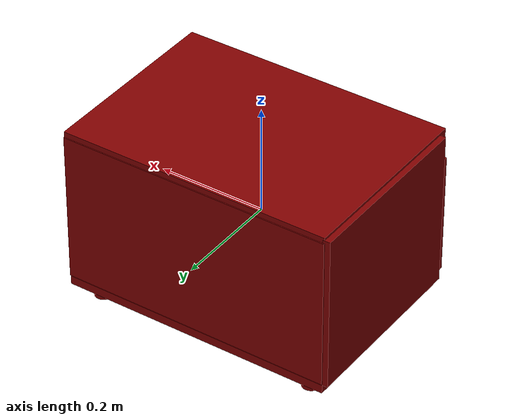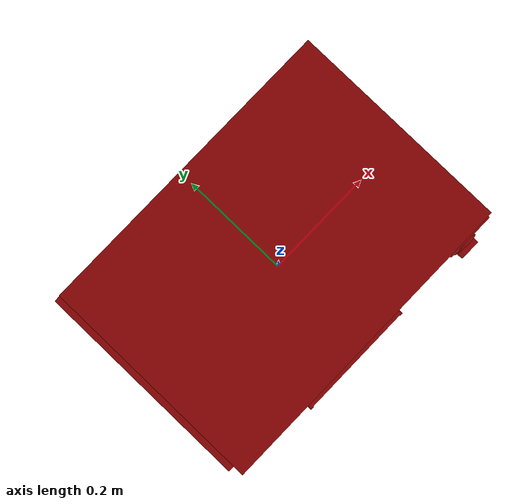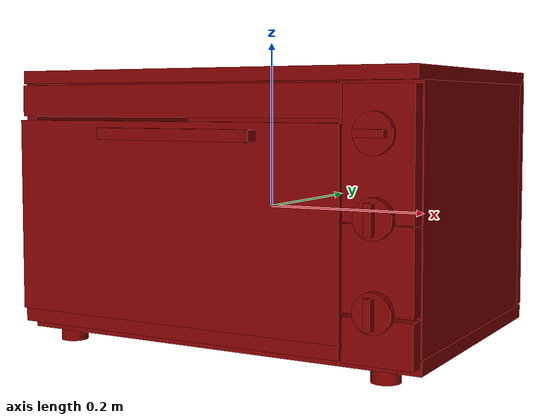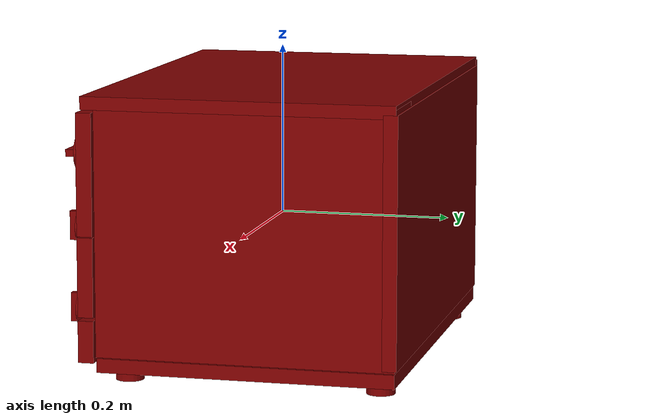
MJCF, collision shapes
<?xml version='1.0' encoding='UTF-8'?>
<mujoco model="model">
  <option timestep="0.002" gravity="0.0 0.0 -9.81"/>
  <compiler angle="radian"/>
  <asset>
    <mesh file="visuals/door.obj" name="door_vis"/>
    <mesh file="visuals/knob_function.obj" name="knob_function_vis"/>
    <mesh file="visuals/knob_temp.obj" name="knob_temp_vis"/>
    <mesh file="visuals/knob_time.obj" name="knob_time_vis"/>
    <mesh file="visuals/rack0.obj" name="rack0_vis"/>
    <mesh file="visuals/rack1.obj" name="rack1_vis"/>
    <mesh file="visuals/Body001.obj" name="Body001_vis"/>
    <mesh file="visuals/window.obj" name="window_vis"/>
    <texture file="visuals/T_BC001.png" name="Body001_material" type="2d"/>
    <material name="Body001_material" rgba="1 1 1 1.0" texture="Body001_material" shininess="0.4472135901451111" specular="0.8"/>
    <texture file="visuals/T_BC001.png" name="door_material" type="2d"/>
    <material name="door_material" rgba="1 1 1 1.0" texture="door_material" shininess="0.4472135901451111" specular="0.8"/>
    <texture file="visuals/T_BC001.png" name="window_material" type="2d"/>
    <material name="window_material" rgba="1 1 1 0.7322834730148315" texture="window_material" shininess="0.5" specular="0.2"/>
    <texture file="visuals/T_BC001.png" name="knob_function_material" type="2d"/>
    <material name="knob_function_material" rgba="1 1 1 1.0" texture="knob_function_material" shininess="0.4472135901451111" specular="0.8"/>
    <texture file="visuals/T_BC001.png" name="knob_temp_material" type="2d"/>
    <material name="knob_temp_material" rgba="1 1 1 1.0" texture="knob_temp_material" shininess="0.4472135901451111" specular="0.8"/>
    <texture file="visuals/T_BC001.png" name="knob_time_material" type="2d"/>
    <material name="knob_time_material" rgba="1 1 1 1.0" texture="knob_time_material" shininess="0.4472135901451111" specular="0.8"/>
    <texture file="visuals/T_BC001.png" name="rack0_material" type="2d"/>
    <material name="rack0_material" rgba="1 1 1 1.0" texture="rack0_material" shininess="0.4472135901451111" specular="0.8"/>
    <texture file="visuals/T_BC001.png" name="rack1_material" type="2d"/>
    <material name="rack1_material" rgba="1 1 1 1.0" texture="rack1_material" shininess="0.4472135901451111" specular="0.8"/>
  </asset>
  <default>
    <default class="visual">
      <geom conaffinity="0" contype="0" group="1" type="mesh"/>
    </default>
    <default class="collision">
      <geom group="0" rgba="0.5 0 0 0.5"/>
    </default>
    <default class="spawn">
      <geom group="0" rgba="1 1 1 0.5" contype="0" conaffinity="0"/>
      <site group="0" rgba="1 1 1 0.5"/>
    </default>
    <default class="region">
      <geom group="1" conaffinity="0" contype="0" rgba="0 1 0 0"/>
    </default>
  </default>
  <worldbody>
    <body>
      <body name="object">
        <geom mesh="Body001_vis" type="mesh" solimp="0.998 0.998 0.001" solref="0.001 1" friction="0.95 0.3 0.1" class="visual" material="Body001_material"/>
        <geom class="collision" type="box" pos="0.00549496 0.01883039 -0.13995463" size="0.25294461846351624 0.17093820869922638 0.008160573430359364" quat="1.0 0.0 0.0 0.0"/>
        <geom class="collision" type="box" pos="0.00549496 0.18360080 0.01281343" size="0.25294461846351624 0.008160586468875408 0.14157119393348694" quat="1.0 0.0 0.0 0.0"/>
        <geom class="collision" type="box" pos="0.21679391 0.01834932 0.01475104" size="0.04150004684925079 0.17141927778720856 0.14546450972557068" quat="1.0 0.0 0.0 0.0"/>
        <geom class="collision" type="box" pos="-0.25107560 0.01883039 0.01475104" size="0.0069770715199410915 0.17093820869922638 0.14546450972557068" quat="1.0 0.0 0.0 0.0"/>
        <geom class="collision" type="box" pos="0.00549496 0.01071494 0.15728989" size="0.25294461846351624 0.1790536642074585 0.007506129331886768" quat="1.0 0.0 0.0 0.0"/>
        <geom class="collision" type="box" pos="-0.03570398 -0.15889787 0.12927152" size="0.21174567937850952 0.010934745892882347 0.018324317410588264" quat="1.0 0.0 0.0 0.0"/>
        <geom class="collision" type="box" pos="0.21826512 -0.16503901 0.07622977" size="0.03927883505821228 0.009000536054372787 0.06987739354372025" quat="1.0 0.0 0.0 0.0"/>
        <geom class="collision" type="box" pos="0.21826512 -0.16503901 -0.04043363" size="0.039278119802474976 0.009000333026051521 0.045587170869112015" quat="1.0 0.0 0.0 0.0"/>
        <geom class="collision" type="box" pos="0.21826512 -0.16503901 -0.11400586" size="0.039278414100408554 0.009000293910503387 0.024065647274255753" quat="1.0 0.0 0.0 0.0"/>
        <geom class="collision" type="cylinder" pos="-0.21006627 -0.12556713 -0.15573707" size="0.016356460750102997 0.009058943018317223" quat="1.0 0.0 0.0 0.0"/>
        <geom class="collision" type="cylinder" pos="-0.21006627 0.16471529 -0.15573707" size="0.016356460750102997 0.009058943018317223" quat="1.0 0.0 0.0 0.0"/>
        <geom class="collision" type="cylinder" pos="0.20916191 0.16471529 -0.15573707" size="0.016356460750102997 0.009058943018317223" quat="1.0 0.0 0.0 0.0"/>
        <geom class="collision" type="cylinder" pos="0.20916191 -0.12783327 -0.15573707" size="0.016356460750102997 0.009058943018317223" quat="1.0 0.0 0.0 0.0"/>
        <geom class="collision" type="box" pos="-0.24351214 0.01289552 -0.07048748" size="0.0038650184869766235 0.1194046288728714 0.002562679350376129" quat="1.0 0.0 0.0 0.0"/>
        <geom class="collision" type="box" pos="0.17642297 0.01289552 -0.07048748" size="0.0038650184869766235 0.1194046288728714 0.002562679350376129" quat="1.0 0.0 0.0 0.0"/>
        <geom class="collision" type="box" pos="-0.24351214 0.01289550 0.00561578" size="0.0038650184869766235 0.1194046139717102 0.00177079439163208" quat="1.0 0.0 0.0 0.0"/>
        <geom class="collision" type="box" pos="0.17642294 0.01289550 0.00561578" size="0.0038650184869766235 0.1194046139717102 0.00177079439163208" quat="1.0 0.0 0.0 0.0"/>
        <body name="door">
          <joint axis="1.0 0.0 0.0" pos="-0.04181366 -0.16399580 -0.14054659" limited="true" name="door_joint" range="0.0 1.3707963267948966" type="hinge" damping="1" frictionloss="1" armature=".01" stiffness="0.05"/>
          <geom mesh="door_vis" type="mesh" solimp="0.998 0.998 0.001" solref="0.001 1" friction="0.95 0.3 0.1" class="visual" material="door_material"/>
          <geom class="collision" type="box" pos="-0.03725190 -0.16604836 -0.11400586" size="0.21059465408325195 0.0036428412422537804 0.024065645411610603" quat="1.0 0.0 0.0 0.0"/>
          <geom class="collision" type="box" pos="-0.03870966 -0.16485840 -0.00796015" size="0.2124694585800171 0.0055625904351472855 0.11423329263925552" quat="1.0 0.0 0.0 0.0" name="door_main"/>
          <geom class="collision" type="box" pos="-0.02345548 -0.18088969 0.09206351" size="0.09913243353366852 0.004090175032615662 0.0066250525414943695" quat="1.0 0.0 0.0 0.0" name="door_handle_main"/>
          <geom class="collision" type="box" pos="-0.12063178 -0.17836518 0.09206352" size="0.0026336698792874813 0.007699350826442242 0.006029232870787382" quat="1.0 0.0 0.0 0.0"/>
          <geom class="collision" type="box" pos="0.07358472 -0.17836518 0.09206352" size="0.0026336698792874813 0.007699350826442242 0.006029232870787382" quat="1.0 0.0 0.0 0.0"/>
          <body name="window">
            <geom mesh="window_vis" type="mesh" solimp="0.998 0.998 0.001" solref="0.001 1" friction="0.95 0.3 0.1" class="visual" material="window_material"/>
            <geom class="collision" type="box" pos="-0.03913853 -0.16485840 -0.00303455" size="0.1740773320198059 0.0028107473626732826 0.08262798935174942" quat="1.0 0.0 0.0 0.0"/>
          </body>
        </body>
        <body name="knob_function">
          <joint axis="0.0 1.0 0.0" pos="0.21597812 -0.17994572 0.09666302" limited="true" name="knob_function_joint" range="0.0 2.6179938779914944" type="hinge" damping="0.05" armature="1" frictionloss="0.75"/>
          <geom mesh="knob_function_vis" type="mesh" solimp="0.998 0.998 0.001" solref="0.001 1" friction="0.95 0.3 0.1" class="visual" material="knob_function_material"/>
          <geom class="collision" type="cylinder" pos="0.21639454 -0.17981675 0.09672548" size="0.02217002771794796 0.0032554829958826303" quat="0.7071067094802856 0.7071068286895752 0.0 0.0" friction="100 0.5 0.01"/>
          <geom class="collision" type="box" pos="0.21578799 -0.18964561 0.09683334" size="0.016602540388703346 0.004773793742060661 0.004078166093677282" quat="1.0 0.0 0.0 0.0" name="knob_function_main" friction="100 0.5 0.01"/>
        </body>
        <body name="knob_temp">
          <joint axis="0.0 1.0 0.0" pos="0.21597713 -0.17995628 -0.08242683" limited="true" name="knob_temp_joint" range="0.0 3.490658503988659" type="hinge" damping="0.05" armature="1" frictionloss="0.75"/>
          <geom mesh="knob_temp_vis" type="mesh" solimp="0.998 0.998 0.001" solref="0.001 1" friction="0.95 0.3 0.1" class="visual" material="knob_temp_material"/>
          <geom class="collision" type="cylinder" pos="0.21609680 -0.17879599 -0.08254745" size="0.021573573350906372 0.0042671337723731995" quat="0.7071067094802856 0.7071068286895752 0.0 0.0" friction="100 0.5 0.01"/>
          <geom class="collision" type="box" pos="0.21578799 -0.18964561 -0.08238784" size="0.004078167490661144 0.004773793742060661 0.016602538526058197" quat="1.0 0.0 0.0 0.0" name="knob_temp_main" friction="100 0.5 0.01"/>
        </body>
        <body name="knob_time">
          <joint axis="0.0 1.0 0.0" pos="0.21597713 -0.17995628 0.01174628" limited="true" name="knob_time_joint" range="-0.8726646259971648 4.6774823953448035" type="hinge" damping="0.05" armature="1" frictionloss="0.75"/>
          <geom mesh="knob_time_vis" type="mesh" solimp="0.998 0.998 0.001" solref="0.001 1" friction="0.95 0.3 0.1" class="visual" material="knob_time_material"/>
          <geom class="collision" type="cylinder" pos="0.21609680 -0.17867985 0.01183813" size="0.021573573350906372 0.0041509936563670635" quat="0.7071067094802856 0.7071068286895752 0.0 0.0" friction="100 0.5 0.01"/>
          <geom class="collision" type="box" pos="0.21578799 -0.18964561 0.01202401" size="0.004078167490661144 0.004773793742060661 0.016602538526058197" quat="1.0 0.0 0.0 0.0" name="knob_time_main" friction="100 0.5 0.01"/>
        </body>
        <body name="rack0">
          <geom class="region" name="reg_rack0" type="box" pos="-0.03300783 0.021252024999999994 -0.02840125" size="0.20467612000000002 0.15107638499999998 0.03442662"/>
          <joint axis="0.0 -1.0 0.0" pos="-0.03390716 0.02054670 -0.06563109" limited="true" name="rack0_joint" range="0.0 0.2" type="slide" damping="1" frictionloss="1" armature=".01" stiffness="0.05"/>
          <geom mesh="rack0_vis" type="mesh" solimp="0.998 0.998 0.001" solref="0.001 1" friction="0.95 0.3 0.1" class="visual" material="rack0_material"/>
          <geom class="collision" type="box" pos="-0.03364429 0.01971510 -0.06607231" size="0.20364992320537567 0.153950035572052 0.0038813003338873386" quat="1.0 0.0 0.0 0.0"/>
        </body>
        <body name="rack1">
          <geom class="region" name="reg_rack1" type="box" pos="-0.03300783 0.021252024999999994 0.061477500000000004" size="0.20467612000000002 0.15107638499999998 0.0477258"/>
          <joint axis="0.0 -1.0 0.0" pos="-0.03390716 0.02054670 0.01061103" limited="true" name="rack1_joint" range="0.0 0.2" type="slide" damping="1" frictionloss="1" armature=".01" stiffness="0.05"/>
          <geom mesh="rack1_vis" type="mesh" solimp="0.998 0.998 0.001" solref="0.001 1" friction="0.95 0.3 0.1" class="visual" material="rack1_material"/>
          <geom class="collision" type="box" pos="-0.03364429 0.02090063 0.01015370" size="0.20364992320537567 0.15276460349559784 0.004150092601776123" quat="1.0 0.0 0.0 0.0"/>
        </body>
        <geom class="region" name="reg_main" type="box" pos="-4.999999997368221e-09 0.01240005000000001 5.0000000112460086e-09" size="0.259509785 0.18237911 0.165796025"/>
      </body>
    </body>
  </worldbody>
  <actuator>
    <motor name="door_joint_actuator" joint="door_joint" gear="50"/>
    <motor name="knob_function_joint_actuator" joint="knob_function_joint" gear="50"/>
    <motor name="knob_temp_joint_actuator" joint="knob_temp_joint" gear="50"/>
    <motor name="knob_time_joint_actuator" joint="knob_time_joint" gear="50"/>
    <motor name="rack0_joint_actuator" joint="rack0_joint" gear="50"/>
    <motor name="rack1_joint_actuator" joint="rack1_joint" gear="50"/>
  </actuator>
</mujoco>
